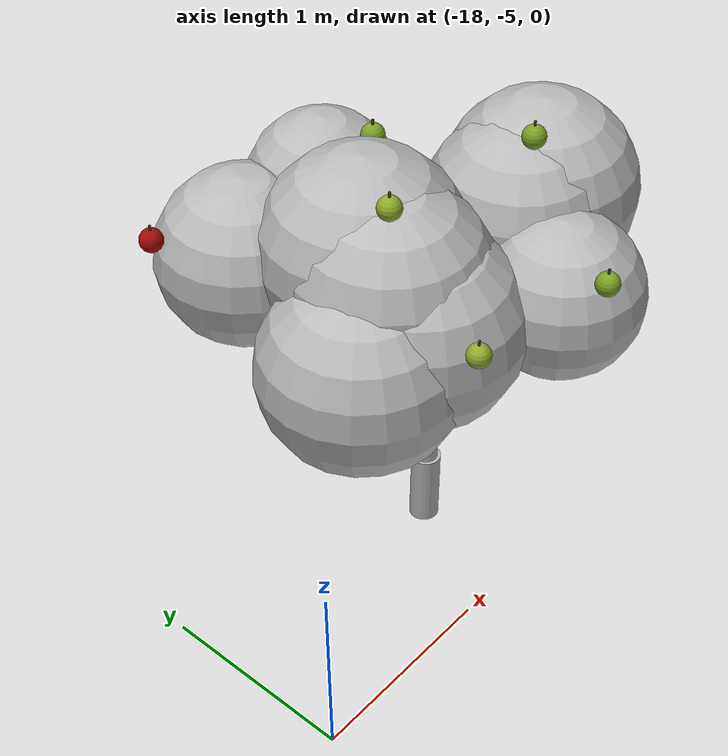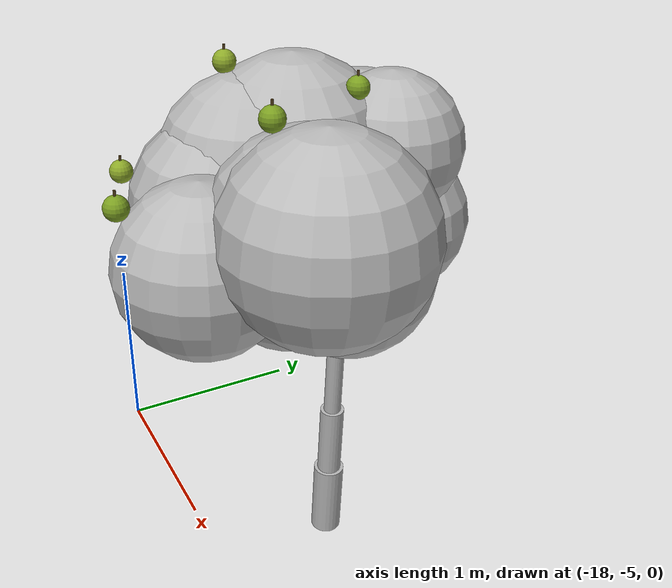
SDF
<sdf version="1.6">
 <world name="default">
  <model name="tree_r1_t0">
   <static>true</static>
   <link name="tree_r1_t0_trunk0">
    <pose>-16.6095 -4.3881 0.1898 -0.0095 0.0400 0</pose>
    <collision name="tree_r1_t0_trunk0_c">
     <geometry><cylinder><radius>0.0760</radius><length>0.4024</length></cylinder></geometry>
    </collision>
    <visual name="tree_r1_t0_trunk0_v">
     <geometry><cylinder><radius>0.0760</radius><length>0.4024</length></cylinder></geometry>
     <material>
      <script>
       <uri>model://orchard/materials/scripts</uri>
       <uri>model://orchard/materials/textures</uri>
       <name>Orchard/Bark</name>
      </script>
     </material>
    </visual>
   </link>
   <link name="tree_r1_t0_trunk1">
    <pose>-16.5943 -4.3845 0.5695 -0.0095 0.0400 0</pose>
    <visual name="tree_r1_t0_trunk1_v">
     <geometry><cylinder><radius>0.0593</radius><length>0.4024</length></cylinder></geometry>
     <material>
      <script>
       <uri>model://orchard/materials/scripts</uri>
       <uri>model://orchard/materials/textures</uri>
       <name>Orchard/Bark</name>
      </script>
     </material>
    </visual>
   </link>
   <link name="tree_r1_t0_trunk2">
    <pose>-16.5791 -4.3809 0.9491 -0.0095 0.0400 0</pose>
    <visual name="tree_r1_t0_trunk2_v">
     <geometry><cylinder><radius>0.0425</radius><length>0.4024</length></cylinder></geometry>
     <material>
      <script>
       <uri>model://orchard/materials/scripts</uri>
       <uri>model://orchard/materials/textures</uri>
       <name>Orchard/Bark</name>
      </script>
     </material>
    </visual>
   </link>
   <link name="tree_r1_t0_br0">
    <pose>-16.3662 -4.4371 1.4114 0.0000 0.6644 -0.2754</pose>
    <visual name="tree_r1_t0_br0_v">
     <geometry><cylinder><radius>0.0354</radius><length>0.6922</length></cylinder></geometry>
     <material>
      <script>
       <uri>model://orchard/materials/scripts</uri>
       <uri>model://orchard/materials/textures</uri>
       <name>Orchard/Bark</name>
      </script>
     </material>
    </visual>
   </link>
   <link name="tree_r1_t0_br1">
    <pose>-16.4964 -4.1784 1.3531 0.0000 0.7855 1.2128</pose>
    <visual name="tree_r1_t0_br1_v">
     <geometry><cylinder><radius>0.0355</radius><length>0.6059</length></cylinder></geometry>
     <material>
      <script>
       <uri>model://orchard/materials/scripts</uri>
       <uri>model://orchard/materials/textures</uri>
       <name>Orchard/Bark</name>
      </script>
     </material>
    </visual>
   </link>
   <link name="tree_r1_t0_br2">
    <pose>-16.7857 -4.2254 1.3939 0.0000 0.8022 2.5192</pose>
    <visual name="tree_r1_t0_br2_v">
     <geometry><cylinder><radius>0.0290</radius><length>0.7335</length></cylinder></geometry>
     <material>
      <script>
       <uri>model://orchard/materials/scripts</uri>
       <uri>model://orchard/materials/textures</uri>
       <name>Orchard/Bark</name>
      </script>
     </material>
    </visual>
   </link>
   <link name="tree_r1_t0_br3">
    <pose>-16.8394 -4.5612 1.3782 0.0000 0.9346 3.7385</pose>
    <visual name="tree_r1_t0_br3_v">
     <geometry><cylinder><radius>0.0234</radius><length>0.8053</length></cylinder></geometry>
     <material>
      <script>
       <uri>model://orchard/materials/scripts</uri>
       <uri>model://orchard/materials/textures</uri>
       <name>Orchard/Bark</name>
      </script>
     </material>
    </visual>
   </link>
   <link name="tree_r1_t0_br4">
    <pose>-16.5696 -4.6238 1.4298 0.0000 0.6993 4.7201</pose>
    <visual name="tree_r1_t0_br4_v">
     <geometry><cylinder><radius>0.0322</radius><length>0.7601</length></cylinder></geometry>
     <material>
      <script>
       <uri>model://orchard/materials/scripts</uri>
       <uri>model://orchard/materials/textures</uri>
       <name>Orchard/Bark</name>
      </script>
     </material>
    </visual>
   </link>
   <link name="tree_r1_t0_fol0">
    <pose>-17.1657 -3.8317 1.7840 0 0 0</pose>
    <visual name="tree_r1_t0_fol0_v">
     <geometry><sphere><radius>0.4022</radius></sphere></geometry>
     <material>
      <script>
       <uri>model://orchard/materials/scripts</uri>
       <uri>model://orchard/materials/textures</uri>
       <name>Orchard/Foliage0</name>
      </script>
     </material>
    </visual>
   </link>
   <link name="tree_r1_t0_fol1">
    <pose>-16.8127 -4.2079 1.7483 0 0 0</pose>
    <visual name="tree_r1_t0_fol1_v">
     <geometry><sphere><radius>0.3462</radius></sphere></geometry>
     <material>
      <script>
       <uri>model://orchard/materials/scripts</uri>
       <uri>model://orchard/materials/textures</uri>
       <name>Orchard/Foliage3</name>
      </script>
     </material>
    </visual>
   </link>
   <link name="tree_r1_t0_fol2">
    <pose>-17.0476 -4.7083 1.7561 0 0 0</pose>
    <visual name="tree_r1_t0_fol2_v">
     <geometry><sphere><radius>0.4789</radius></sphere></geometry>
     <material>
      <script>
       <uri>model://orchard/materials/scripts</uri>
       <uri>model://orchard/materials/textures</uri>
       <name>Orchard/Foliage3</name>
      </script>
     </material>
    </visual>
   </link>
   <link name="tree_r1_t0_fol3">
    <pose>-16.8627 -4.3035 1.5286 0 0 0</pose>
    <visual name="tree_r1_t0_fol3_v">
     <geometry><sphere><radius>0.4922</radius></sphere></geometry>
     <material>
      <script>
       <uri>model://orchard/materials/scripts</uri>
       <uri>model://orchard/materials/textures</uri>
       <name>Orchard/Foliage0</name>
      </script>
     </material>
    </visual>
   </link>
   <link name="tree_r1_t0_fol4">
    <pose>-16.5102 -5.0508 1.7748 0 0 0</pose>
    <visual name="tree_r1_t0_fol4_v">
     <geometry><sphere><radius>0.3880</radius></sphere></geometry>
     <material>
      <script>
       <uri>model://orchard/materials/scripts</uri>
       <uri>model://orchard/materials/textures</uri>
       <name>Orchard/Foliage0</name>
      </script>
     </material>
    </visual>
   </link>
   <link name="tree_r1_t0_fol5">
    <pose>-17.0345 -4.3806 1.9848 0 0 0</pose>
    <visual name="tree_r1_t0_fol5_v">
     <geometry><sphere><radius>0.4805</radius></sphere></geometry>
     <material>
      <script>
       <uri>model://orchard/materials/scripts</uri>
       <uri>model://orchard/materials/textures</uri>
       <name>Orchard/Foliage2</name>
      </script>
     </material>
    </visual>
   </link>
   <link name="tree_r1_t0_fol6">
    <pose>-16.8920 -3.9099 1.6106 0 0 0</pose>
    <visual name="tree_r1_t0_fol6_v">
     <geometry><sphere><radius>0.3932</radius></sphere></geometry>
     <material>
      <script>
       <uri>model://orchard/materials/scripts</uri>
       <uri>model://orchard/materials/textures</uri>
       <name>Orchard/Foliage2</name>
      </script>
     </material>
    </visual>
   </link>
   <link name="tree_r1_t0_fol7">
    <pose>-17.0746 -4.5634 1.9167 0 0 0</pose>
    <visual name="tree_r1_t0_fol7_v">
     <geometry><sphere><radius>0.4760</radius></sphere></geometry>
     <material>
      <script>
       <uri>model://orchard/materials/scripts</uri>
       <uri>model://orchard/materials/textures</uri>
       <name>Orchard/Foliage1</name>
      </script>
     </material>
    </visual>
   </link>
   <link name="tree_r1_t0_fol8">
    <pose>-16.8389 -3.9649 2.0217 0 0 0</pose>
    <visual name="tree_r1_t0_fol8_v">
     <geometry><sphere><radius>0.3571</radius></sphere></geometry>
     <material>
      <script>
       <uri>model://orchard/materials/scripts</uri>
       <uri>model://orchard/materials/textures</uri>
       <name>Orchard/Foliage0</name>
      </script>
     </material>
    </visual>
   </link>
   <link name="tree_r1_t0_fol9">
    <pose>-17.2628 -3.8825 1.8393 0 0 0</pose>
    <visual name="tree_r1_t0_fol9_v">
     <geometry><sphere><radius>0.4160</radius></sphere></geometry>
     <material>
      <script>
       <uri>model://orchard/materials/scripts</uri>
       <uri>model://orchard/materials/textures</uri>
       <name>Orchard/Foliage1</name>
      </script>
     </material>
    </visual>
   </link>
   <link name="tree_r1_t0_fol10">
    <pose>-16.1617 -4.6624 1.9799 0 0 0</pose>
    <visual name="tree_r1_t0_fol10_v">
     <geometry><sphere><radius>0.4584</radius></sphere></geometry>
     <material>
      <script>
       <uri>model://orchard/materials/scripts</uri>
       <uri>model://orchard/materials/textures</uri>
       <name>Orchard/Foliage1</name>
      </script>
     </material>
    </visual>
   </link>
   <link name="tree_r1_t0_fol11">
    <pose>-16.6237 -4.5939 1.6328 0 0 0</pose>
    <visual name="tree_r1_t0_fol11_v">
     <geometry><sphere><radius>0.3963</radius></sphere></geometry>
     <material>
      <script>
       <uri>model://orchard/materials/scripts</uri>
       <uri>model://orchard/materials/textures</uri>
       <name>Orchard/Foliage1</name>
      </script>
     </material>
    </visual>
   </link>
   <link name="tree_r1_t0_fol12">
    <pose>-17.3360 -4.6309 1.6526 0 0 0</pose>
    <visual name="tree_r1_t0_fol12_v">
     <geometry><sphere><radius>0.4723</radius></sphere></geometry>
     <material>
      <script>
       <uri>model://orchard/materials/scripts</uri>
       <uri>model://orchard/materials/textures</uri>
       <name>Orchard/Foliage2</name>
      </script>
     </material>
    </visual>
   </link>
   <link name="tree_r1_t0_fol13">
    <pose>-16.3186 -4.6617 1.9427 0 0 0</pose>
    <visual name="tree_r1_t0_fol13_v">
     <geometry><sphere><radius>0.4405</radius></sphere></geometry>
     <material>
      <script>
       <uri>model://orchard/materials/scripts</uri>
       <uri>model://orchard/materials/textures</uri>
       <name>Orchard/Foliage0</name>
      </script>
     </material>
    </visual>
   </link>
   <link name="tree_r1_t0_fol14">
    <pose>-16.5351 -4.3475 1.5904 0 0 0</pose>
    <visual name="tree_r1_t0_fol14_v">
     <geometry><sphere><radius>0.4114</radius></sphere></geometry>
     <material>
      <script>
       <uri>model://orchard/materials/scripts</uri>
       <uri>model://orchard/materials/textures</uri>
       <name>Orchard/Foliage1</name>
      </script>
     </material>
    </visual>
   </link>
   <link name="tree_r1_t0_ap0">
    <pose>-16.3973 -4.7825 2.4110 0 0 0</pose>
    <visual name="tree_r1_t0_ap0_v">
     <geometry><sphere><radius>0.0550</radius></sphere></geometry>
     <material>
      <ambient>0.192 0.248 0.052 1.00</ambient>
      <diffuse>0.480 0.620 0.130 1.00</diffuse>
      <specular>0.45 0.35 0.32 1</specular>
     </material>
    </visual>
   </link>
   <link name="tree_r1_t0_st0">
    <pose>-16.3973 -4.7825 2.4632 0 0 0</pose>
    <visual name="tree_r1_t0_st0_v">
     <geometry><cylinder><radius>0.0060</radius><length>0.0500</length></cylinder></geometry>
     <material><ambient>0.128 0.096 0.040 1.00</ambient><diffuse>0.320 0.240 0.100 1.00</diffuse></material>
    </visual>
   </link>
   <link name="tree_r1_t0_ap1">
    <pose>-17.1789 -4.6521 2.4164 0 0 0</pose>
    <visual name="tree_r1_t0_ap1_v">
     <geometry><sphere><radius>0.0550</radius></sphere></geometry>
     <material>
      <ambient>0.220 0.264 0.064 1.00</ambient>
      <diffuse>0.550 0.660 0.160 1.00</diffuse>
      <specular>0.45 0.35 0.32 1</specular>
     </material>
    </visual>
   </link>
   <link name="tree_r1_t0_st1">
    <pose>-17.1789 -4.6521 2.4687 0 0 0</pose>
    <visual name="tree_r1_t0_st1_v">
     <geometry><cylinder><radius>0.0060</radius><length>0.0500</length></cylinder></geometry>
     <material><ambient>0.128 0.096 0.040 1.00</ambient><diffuse>0.320 0.240 0.100 1.00</diffuse></material>
    </visual>
   </link>
   <link name="tree_r1_t0_ap2">
    <pose>-16.7602 -4.1949 2.3477 0 0 0</pose>
    <visual name="tree_r1_t0_ap2_v">
     <geometry><sphere><radius>0.0550</radius></sphere></geometry>
     <material>
      <ambient>0.192 0.248 0.052 1.00</ambient>
      <diffuse>0.480 0.620 0.130 1.00</diffuse>
      <specular>0.45 0.35 0.32 1</specular>
     </material>
    </visual>
   </link>
   <link name="tree_r1_t0_st2">
    <pose>-16.7602 -4.1949 2.4000 0 0 0</pose>
    <visual name="tree_r1_t0_st2_v">
     <geometry><cylinder><radius>0.0060</radius><length>0.0500</length></cylinder></geometry>
     <material><ambient>0.128 0.096 0.040 1.00</ambient><diffuse>0.320 0.240 0.100 1.00</diffuse></material>
    </visual>
   </link>
   <link name="tree_r1_t0_ap3">
    <pose>-17.6394 -3.7068 2.0492 0 0 0</pose>
    <visual name="tree_r1_t0_ap3_v">
     <geometry><sphere><radius>0.0550</radius></sphere></geometry>
     <material>
      <ambient>0.248 0.016 0.012 1.00</ambient>
      <diffuse>0.620 0.040 0.030 1.00</diffuse>
      <specular>0.45 0.35 0.32 1</specular>
     </material>
    </visual>
   </link>
   <link name="tree_r1_t0_st3">
    <pose>-17.6394 -3.7068 2.1014 0 0 0</pose>
    <visual name="tree_r1_t0_st3_v">
     <geometry><cylinder><radius>0.0060</radius><length>0.0500</length></cylinder></geometry>
     <material><ambient>0.128 0.096 0.040 1.00</ambient><diffuse>0.320 0.240 0.100 1.00</diffuse></material>
    </visual>
   </link>
   <link name="tree_r1_t0_ap4">
    <pose>-16.6272 -5.3600 2.0614 0 0 0</pose>
    <visual name="tree_r1_t0_ap4_v">
     <geometry><sphere><radius>0.0550</radius></sphere></geometry>
     <material>
      <ambient>0.192 0.248 0.052 1.00</ambient>
      <diffuse>0.480 0.620 0.130 1.00</diffuse>
      <specular>0.45 0.35 0.32 1</specular>
     </material>
    </visual>
   </link>
   <link name="tree_r1_t0_st4">
    <pose>-16.6272 -5.3600 2.1136 0 0 0</pose>
    <visual name="tree_r1_t0_st4_v">
     <geometry><cylinder><radius>0.0060</radius><length>0.0500</length></cylinder></geometry>
     <material><ambient>0.128 0.096 0.040 1.00</ambient><diffuse>0.320 0.240 0.100 1.00</diffuse></material>
    </visual>
   </link>
   <link name="tree_r1_t0_ap5">
    <pose>-17.2250 -5.1627 1.9590 0 0 0</pose>
    <visual name="tree_r1_t0_ap5_v">
     <geometry><sphere><radius>0.0550</radius></sphere></geometry>
     <material>
      <ambient>0.220 0.264 0.064 1.00</ambient>
      <diffuse>0.550 0.660 0.160 1.00</diffuse>
      <specular>0.45 0.35 0.32 1</specular>
     </material>
    </visual>
   </link>
   <link name="tree_r1_t0_st5">
    <pose>-17.2250 -5.1627 2.0113 0 0 0</pose>
    <visual name="tree_r1_t0_st5_v">
     <geometry><cylinder><radius>0.0060</radius><length>0.0500</length></cylinder></geometry>
     <material><ambient>0.128 0.096 0.040 1.00</ambient><diffuse>0.320 0.240 0.100 1.00</diffuse></material>
    </visual>
   </link>
  </model>
 </world>
</sdf>
